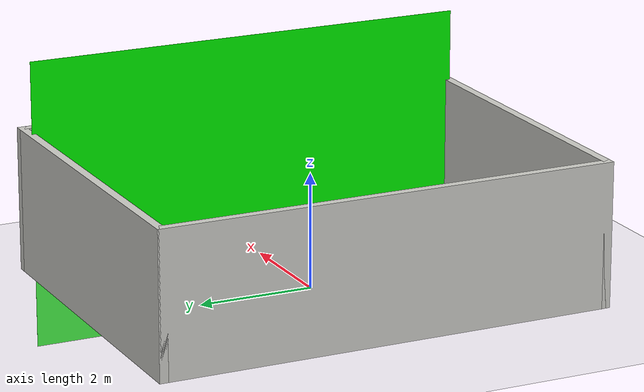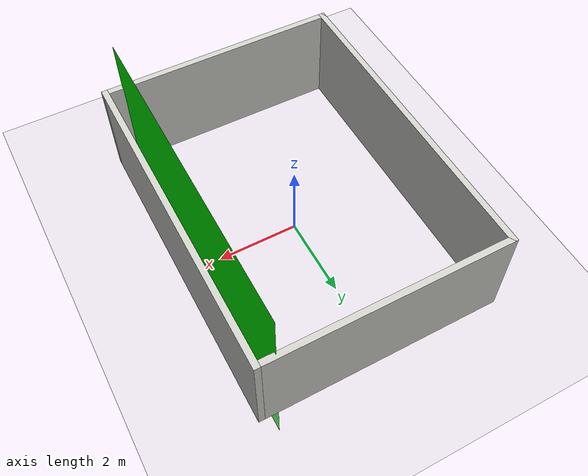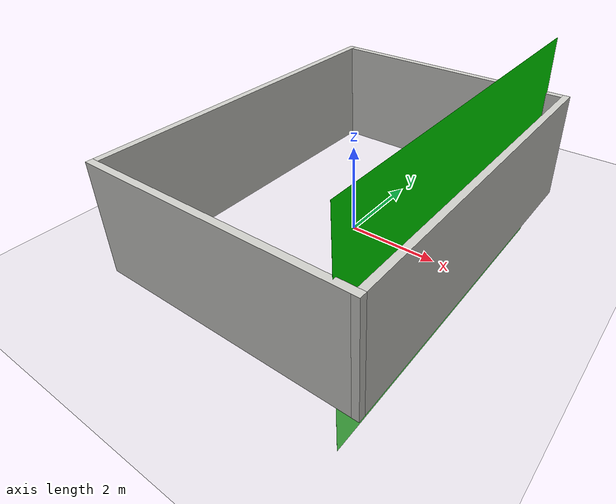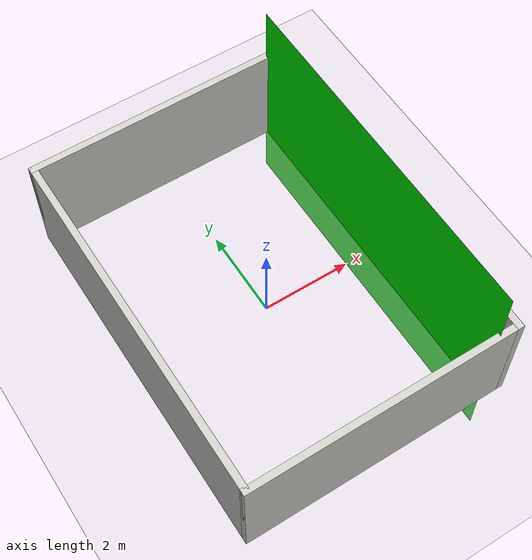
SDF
<sdf version="1.6">
 <world name="default">
  <light name="sun" type="directional">
   <pose>0 0 10 0 -0 0</pose>
   <diffuse>0.8 0.8 0.8 1</diffuse>
   <specular>0.1 0.1 0.1 1</specular>
   <attenuation>
    <range>1000</range>
    <constant>0.9</constant>
    <linear>0.01</linear>
    <quadratic>0.001</quadratic>
   </attenuation>
   <direction>-0.5 0.5 -1</direction>
  </light>
  <model name="ground_plane">
   <static>1</static>
   <link name="link">
    <collision name="collision">
     <geometry><plane><normal>0 0 1</normal><size>100 100</size></plane></geometry>
     <surface><friction><ode><mu>100</mu><mu2>50</mu2></ode></friction></surface>
    </collision>
    <visual name="visual">
     <cast_shadows>0</cast_shadows>
     <geometry><plane><normal>0 0 1</normal><size>100 100</size></plane></geometry>
     <material>
      <script><uri>file://media/materials/scripts/gazebo.material</uri><name>Gazebo/Grey</name></script>
     </material>
    </visual>
   </link>
  </model>
  <gravity>0 0 -9.8</gravity>
  <magnetic_field>6e-06 2.3e-05 -4.2e-05</magnetic_field>
  <atmosphere type="adiabatic"/>
  <physics name="default_physics" default="0" type="ode">
   <max_step_size>0.001</max_step_size>
   <real_time_factor>1</real_time_factor>
   <real_time_update_rate>1000</real_time_update_rate>
  </physics>
  <scene><ambient>0.4 0.4 0.4 1</ambient><background>0.7 0.7 0.7 1</background><shadows>1</shadows></scene>
  <spherical_coordinates>
   <surface_model>EARTH_WGS84</surface_model>
   <latitude_deg>0</latitude_deg>
   <longitude_deg>0</longitude_deg>
   <elevation>0</elevation>
   <heading_deg>0</heading_deg>
  </spherical_coordinates>
  <model name="6x8">
   <pose>4e-06 0 0 0 -0 1.57079</pose>
   <link name="Wall_16">
    <collision name="Wall_16_Collision">
     <geometry><box><size>6 0.15 2.5</size></box></geometry>
     <pose>0 0 1.25 0 -0 0</pose>
    </collision>
    <visual name="Wall_16_Visual">
     <pose>0 0 1.25 0 -0 0</pose>
     <geometry><box><size>6 0.15 2.5</size></box></geometry>
     <material>
      <script><uri>file://media/materials/scripts/gazebo.material</uri><name>Gazebo/CeilingTiled</name></script>
      <ambient>1 1 1 1</ambient>
     </material>
    </visual>
    <pose>-3.925 0 0 0 -0 1.5708</pose>
   </link>
   <link name="Wall_17">
    <collision name="Wall_17_Collision">
     <geometry><box><size>8 0.15 2.5</size></box></geometry>
     <pose>0 0 1.25 0 -0 0</pose>
    </collision>
    <visual name="Wall_17_Visual">
     <pose>0 0 1.25 0 -0 0</pose>
     <geometry><box><size>8 0.15 2.5</size></box></geometry>
     <material>
      <script><uri>file://media/materials/scripts/gazebo.material</uri><name>Gazebo/CeilingTiled</name></script>
      <ambient>1 1 1 1</ambient>
     </material>
    </visual>
    <pose>0 2.925 0 0 -0 0</pose>
   </link>
   <link name="Wall_18">
    <collision name="Wall_18_Collision">
     <geometry><box><size>6 0.15 2.5</size></box></geometry>
     <pose>0 0 1.25 0 -0 0</pose>
    </collision>
    <visual name="Wall_18_Visual">
     <pose>0 0 1.25 0 -0 0</pose>
     <geometry><box><size>6 0.15 2.5</size></box></geometry>
     <material>
      <script><uri>file://media/materials/scripts/gazebo.material</uri><name>Gazebo/CeilingTiled</name></script>
      <ambient>1 1 1 1</ambient>
     </material>
    </visual>
    <pose>3.925 0 0 0 0 -1.5708</pose>
   </link>
   <link name="Wall_19">
    <collision name="Wall_19_Collision">
     <geometry><box><size>8 0.15 2.5</size></box></geometry>
     <pose>0 0 1.25 0 -0 0</pose>
    </collision>
    <visual name="Wall_19_Visual">
     <pose>0 0 1.25 0 -0 0</pose>
     <geometry><box><size>8 0.15 2.5</size></box></geometry>
     <material>
      <script><uri>file://media/materials/scripts/gazebo.material</uri><name>Gazebo/CeilingTiled</name></script>
      <ambient>1 1 1 1</ambient>
     </material>
    </visual>
    <pose>0 -2.925 0 0 -0 3.14159</pose>
   </link>
   <static>1</static>
  </model>
  <model name="laser_green">
   <pose>2.5 0 0 0 0 -1.5708</pose>
   <link name="Wall_0">
    <visual name="Wall_0_Visual">
     <pose>0 0 1.25 0 -0 0</pose>
     <geometry><box><size>7.85 0.001 5</size></box></geometry>
     <material>
      <script><uri>file://media/materials/scripts/gazebo.material</uri><name>Gazebo/Grey</name></script>
      <ambient>0 0.945098 0 1</ambient>
     </material>
    </visual>
    <pose>0 0 0 0 -0 3.14159</pose>
   </link>
   <static>1</static>
  </model>
 </world>
</sdf>
